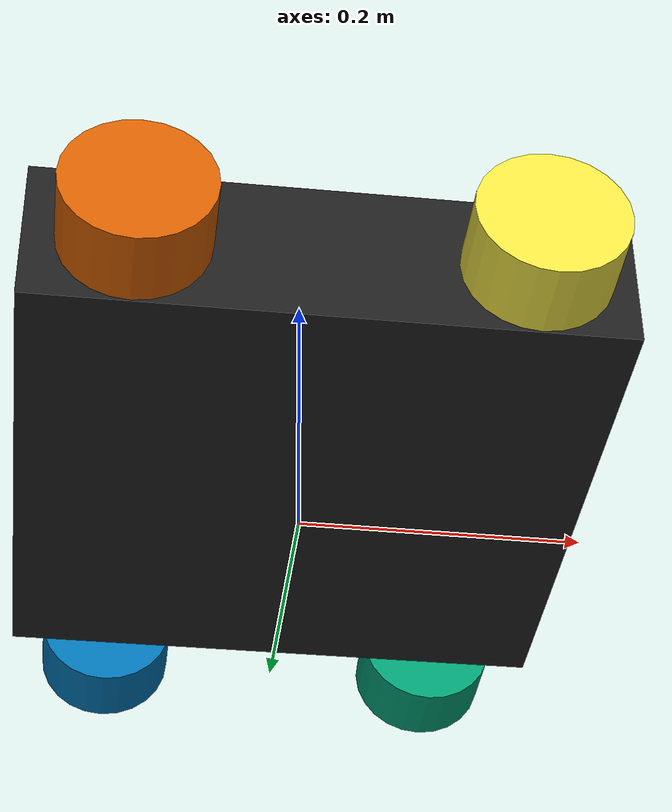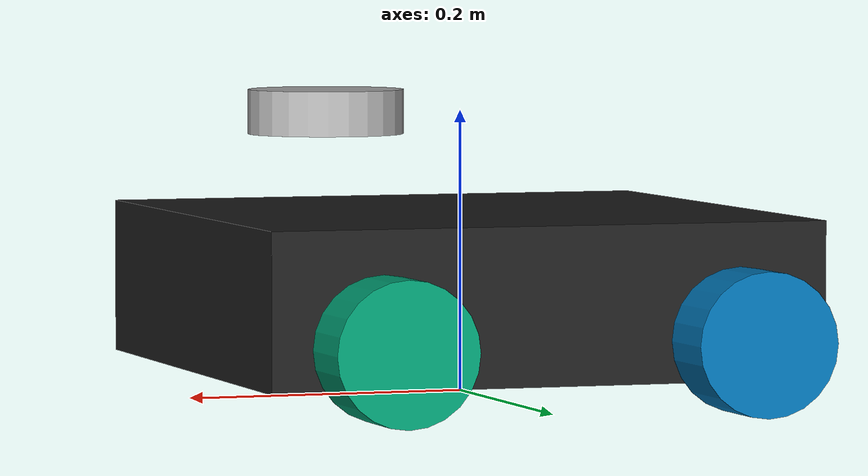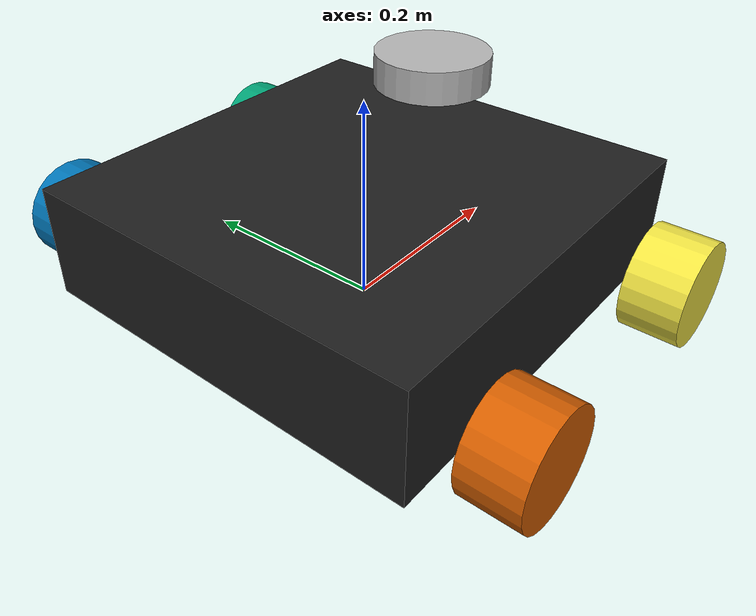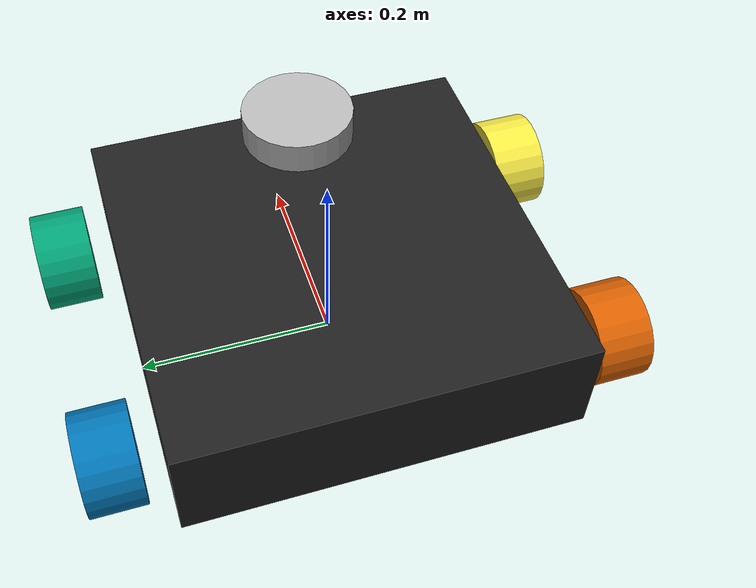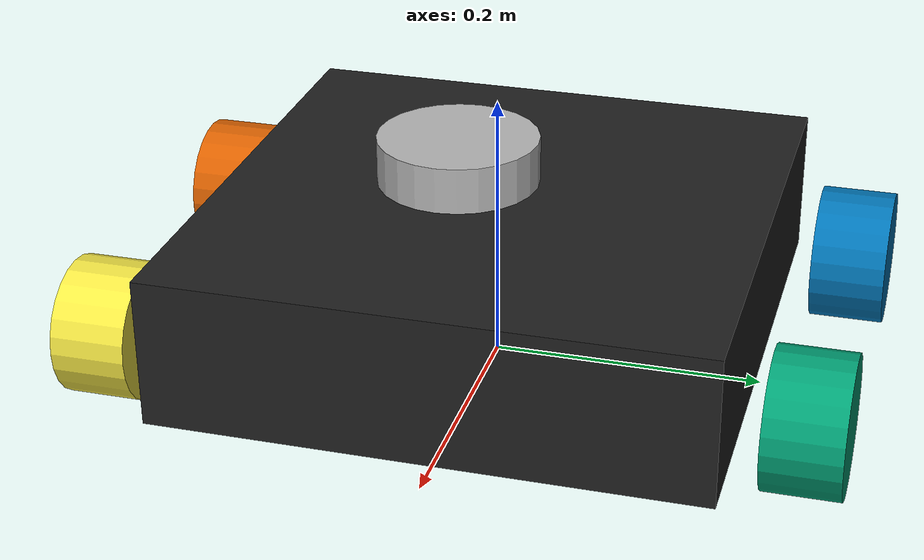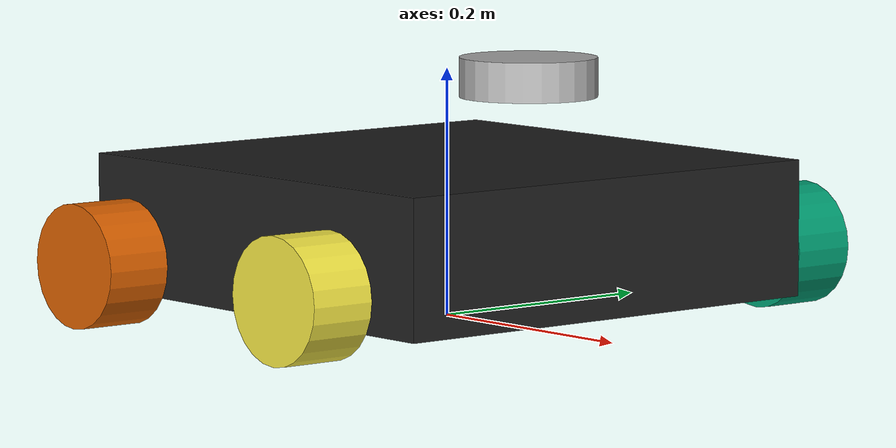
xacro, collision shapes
<?xml version="1.0" ?>

<!-- 20.08.02 Test For Mecanum FET Version -->

<robot name="turtlebot3_mecanum" xmlns:xacro="http://ros.org/wiki/xacro">
  <xacro:include filename="$(find turtlebot3_description)/urdf/common_properties.xacro"/>

  <link name="base_footprint"/>

  <joint name="base_joint" type="fixed">
    <parent link="base_footprint"/>
    <child link="base_link" />
    <origin xyz="0 0 0.027" rpy="0 0 0"/>
  </joint>

  <link name="base_link">
    <visual>
      <origin xyz="0 0 0" rpy="0 0 0"/>
      <geometry>
        <mesh filename="package://turtlebot3_description/meshes/bases/waffle_pi_base.stl" scale="0.001 0.001 0.001"/>
      </geometry>
      <material name="light_black"/>
    </visual>

    <collision>
      <origin xyz="0 0 0.047" rpy="0 0 0"/>
      <geometry>
        <box size="0.4 0.4 0.11"/>
      </geometry>
    </collision>

    <inertial>
      <origin xyz="0 0 0" rpy="0 0 0"/>
      <mass value="1.3729096e+00"/>
      <inertia ixx="8.7002718e-03" ixy="-4.7576583e-05" ixz="1.1160499e-04"
               iyy="8.6195418e-03" iyz="-3.5422299e-06"
               izz="1.4612727e-02" />
    </inertial>
  </link>

  <joint name="wheel_left_joint" type="continuous">
    <parent link="base_link"/>
    <child link="wheel_left_link"/>
    <origin xyz="0.128 0.25 0.023" rpy="-1.57 0 0"/>
    <axis xyz="0 0 1"/>
  </joint>

  <link name="wheel_left_link">
    <visual>
      <origin xyz="0 0 0" rpy="1.57 0 0"/>
      <geometry>
        <mesh filename="package://turtlebot3_description/meshes/wheels/left_tire.stl" scale="0.0015 0.003 0.0015"/>
      </geometry>
      <material name="dark"/>
    </visual>

    <collision>
      <origin xyz="0 0 0" rpy="0 0 0"/>
      <geometry>
        <cylinder length="0.055" radius="0.05"/>
      </geometry>
    </collision>

    <inertial>
      <origin xyz="0 0 0" />
      <mass value="2.8498940e-02" />
      <inertia ixx="1.1175580e-05" ixy="-4.2369783e-11" ixz="-5.9381719e-09"
               iyy="1.1192413e-05" iyz="-1.4400107e-11"
               izz="2.0712558e-05" />
      </inertial>
  </link>

  <joint name="wheel_right_joint" type="continuous">
    <parent link="base_link"/>
    <child link="wheel_right_link"/>
    <origin xyz="0.128 -0.25 0.023" rpy="-1.57 0 0"/>
    <axis xyz="0 0 1"/>
  </joint>

  <link name="wheel_right_link">
    <visual>
      <origin xyz="0 0 0" rpy="1.57 0 0"/>
      <geometry>
        <mesh filename="package://turtlebot3_description/meshes/wheels/right_tire.stl" scale="0.0015 0.003 0.0015"/>
      </geometry>
      <material name="dark"/>
    </visual>

    <collision>
      <origin xyz="0 0 0" rpy="0 0 0"/>
      <geometry>
        <cylinder length="0.055" radius="0.05"/>
      </geometry>
    </collision>

    <inertial>
      <origin xyz="0 0 0" />
      <mass value="2.8498940e-02" />
      <inertia ixx="1.1175580e-05" ixy="-4.2369783e-11" ixz="-5.9381719e-09"
               iyy="1.1192413e-05" iyz="-1.4400107e-11"
               izz="2.0712558e-05" />
      </inertial>
  </link>

  <joint name="wheel_rear_left_joint" type="continuous">
    <parent link="base_link"/>
    <child link="wheel_rear_left_link"/>
    <origin xyz="-0.128 0.25 0.023" rpy="-1.57 0 0"/>
    <axis xyz="0 0 1"/>
  </joint>

  <link name="wheel_rear_left_link">
    <visual>
      <origin xyz="0 0 0" rpy="1.57 0 0"/>
      <geometry>
        <mesh filename="package://turtlebot3_description/meshes/wheels/left_tire.stl" scale="0.0015 0.003 0.0015"/>
      </geometry>
      <material name="dark"/>
    </visual>

    <collision>
      <origin xyz="0 0 0" rpy="0 0 0"/>
      <geometry>
        <cylinder length="0.055" radius="0.05"/>
      </geometry>
    </collision>

    <inertial>
      <origin xyz="0 0 0" />
      <mass value="2.8498940e-02" />
      <inertia ixx="1.1175580e-05" ixy="-4.2369783e-11" ixz="-5.9381719e-09"
               iyy="1.1192413e-05" iyz="-1.4400107e-11"
               izz="2.0712558e-05" />
      </inertial>
  </link>

  <joint name="wheel_rear_right_joint" type="continuous">
    <parent link="base_link"/>
    <child link="wheel_rear_right_link"/>
    <origin xyz="-0.128 -0.25 0.023" rpy="-1.57 0 0"/>
    <axis xyz="0 0 1"/>
  </joint>

  <link name="wheel_rear_right_link">
    <visual>
      <origin xyz="0 0 0" rpy="1.57 0 0"/>
      <geometry>
        <mesh filename="package://turtlebot3_description/meshes/wheels/right_tire.stl" scale="0.0015 0.003 0.0015"/>
      </geometry>
      <material name="dark"/>
    </visual>

    <collision>
      <origin xyz="0 0 0" rpy="0 0 0"/>
      <geometry>
        <cylinder length="0.055" radius="0.05"/>
      </geometry>
    </collision>

    <inertial>
      <origin xyz="0 0 0" />
      <mass value="2.8498940e-02" />
      <inertia ixx="1.1175580e-05" ixy="-4.2369783e-11" ixz="-5.9381719e-09"
               iyy="1.1192413e-05" iyz="-1.4400107e-11"
               izz="2.0712558e-05" />
      </inertial>
  </link>

  <joint name="imu_joint" type="fixed">
    <parent link="base_link"/>
    <child link="imu_link"/>
    <origin xyz="0.128 0.064 0.068" rpy="0 0 0"/>
  </joint>

  <link name="imu_link"/>

  <joint name="scan_joint" type="fixed">
    <parent link="base_link"/>
    <child link="base_scan"/>
    <origin xyz="0.10 0 0.18" rpy="0 0 0"/>
  </joint>

  <link name="base_scan">
    <visual>
      <origin xyz="0 0 0.0" rpy="0 0 0"/>
      <geometry>
        <mesh filename="package://turtlebot3_description/meshes/sensors/lds.stl" scale="0.001 0.001 0.001"/>
      </geometry>
      <material name="dark"/>
    </visual>

    <collision>
      <origin xyz="0 0 -0.0065" rpy="0 0 0"/>
      <geometry>
        <cylinder length="0.0315" radius="0.055"/>
      </geometry>
    </collision>

    <inertial>
      <mass value="0.114" />
      <origin xyz="0 0 0" />
      <inertia ixx="0.001" ixy="0.0" ixz="0.0"
               iyy="0.001" iyz="0.0"
               izz="0.001" />
    </inertial>
  </link>

</robot>
